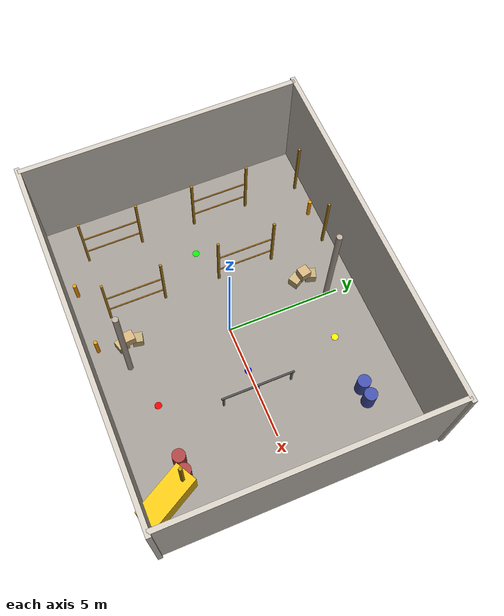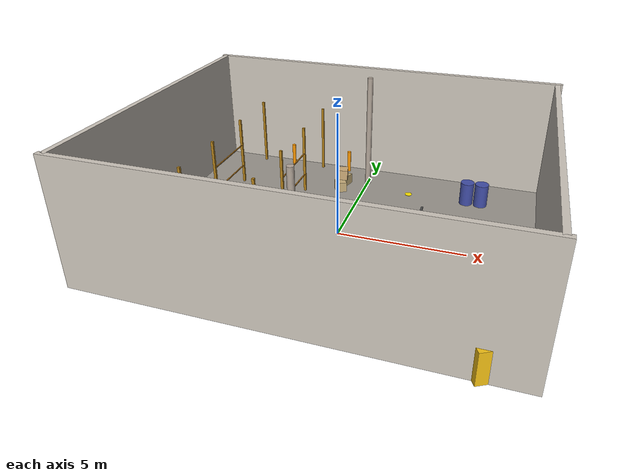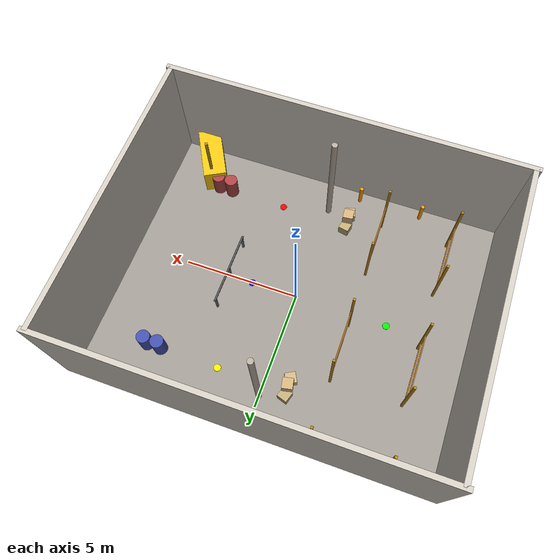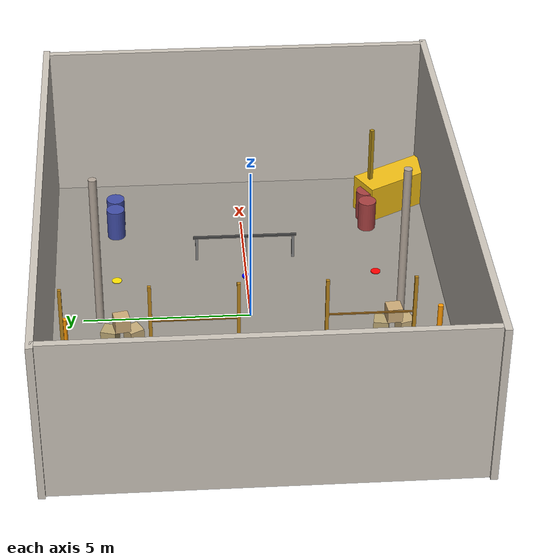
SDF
<?xml version="1.0" ?>
<sdf version="1.6">
  <world name="empty">

    <!-- ── gz-sim8 (Gazebo Harmonic) plugins ─────────────────────────── -->
    <plugin filename="gz-sim-physics-system"
            name="gz::sim::systems::Physics"/>
    <plugin filename="gz-sim-user-commands-system"
            name="gz::sim::systems::UserCommands"/>
    <plugin filename="gz-sim-scene-broadcaster-system"
            name="gz::sim::systems::SceneBroadcaster"/>
    <plugin filename="gz-sim-imu-system"
            name="gz::sim::systems::Imu"/>
    <plugin filename="gz-sim-sensors-system"
            name="gz::sim::systems::Sensors">
      <render_engine>ogre2</render_engine>
    </plugin>

    <physics name="default_physics" type="ignored">
      <max_step_size>0.001</max_step_size>
      <real_time_factor>1</real_time_factor>
    </physics>

    <!-- ── Lighting ───────────────────────────────────────────────────── -->
    <light name="sun" type="directional">
      <cast_shadows>true</cast_shadows>
      <pose>0 0 20 0 -0.5 0.7</pose>
      <diffuse>0.95 0.95 0.90 1</diffuse>
      <specular>0.2 0.2 0.2 1</specular>
      <direction>-0.5 0.2 -0.9</direction>
    </light>
    <light name="warehouse_fill" type="directional">
      <cast_shadows>false</cast_shadows>
      <pose>0 0 8 0 0 0</pose>
      <diffuse>0.5 0.5 0.55 1</diffuse>
      <specular>0.05 0.05 0.05 1</specular>
      <direction>0 0 -1</direction>
    </light>

    <!--  FLOOR  (15 × 12 m concrete)                                   -->
    <model name="floor">
      <static>true</static>
      <pose>0 0 0 0 0 0</pose>
      <link name="link">
        <collision name="col"><geometry><box><size>15 12 0.02</size></box></geometry></collision>
        <visual name="vis">
          <geometry><box><size>15 12 0.02</size></box></geometry>
          <material><ambient>0.50 0.48 0.45 1</ambient><diffuse>0.60 0.58 0.55 1</diffuse></material>
        </visual>
      </link>
    </model>

    <!--  WALLS  (height 5 m to match industrial warehouse)             -->
    <model name="wall_north">
      <static>true</static><pose>0 6.0 2.5 0 0 0</pose>
      <link name="link">
        <collision name="col"><geometry><box><size>15.4 0.2 5.0</size></box></geometry></collision>
        <visual name="vis"><geometry><box><size>15.4 0.2 5.0</size></box></geometry>
          <material><ambient>0.75 0.72 0.68 1</ambient><diffuse>0.80 0.77 0.73 1</diffuse></material>
        </visual>
      </link>
    </model>
    <model name="wall_south">
      <static>true</static><pose>0 -6.0 2.5 0 0 0</pose>
      <link name="link">
        <collision name="col"><geometry><box><size>15.4 0.2 5.0</size></box></geometry></collision>
        <visual name="vis"><geometry><box><size>15.4 0.2 5.0</size></box></geometry>
          <material><ambient>0.75 0.72 0.68 1</ambient><diffuse>0.80 0.77 0.73 1</diffuse></material>
        </visual>
      </link>
    </model>
    <model name="wall_east">
      <static>true</static><pose>7.5 0 2.5 0 0 0</pose>
      <link name="link">
        <collision name="col"><geometry><box><size>0.2 12.0 5.0</size></box></geometry></collision>
        <visual name="vis"><geometry><box><size>0.2 12.0 5.0</size></box></geometry>
          <material><ambient>0.75 0.72 0.68 1</ambient><diffuse>0.80 0.77 0.73 1</diffuse></material>
        </visual>
      </link>
    </model>
    <model name="wall_west">
      <static>true</static><pose>-7.5 0 2.5 0 0 0</pose>
      <link name="link">
        <collision name="col"><geometry><box><size>0.2 12.0 5.0</size></box></geometry></collision>
        <visual name="vis"><geometry><box><size>0.2 12.0 5.0</size></box></geometry>
          <material><ambient>0.75 0.72 0.68 1</ambient><diffuse>0.80 0.77 0.73 1</diffuse></material>
        </visual>
      </link>
    </model>

    <!--  PALLET RACK ROW A  (x = -5.5, outer left wall side)          -->
    <!--  5 uprights, 4 inter-post decks at 2 heights                  -->
    <!--  Uprights 0.10×0.10×3.0 m — LiDAR detects lower 0.2 m        -->
    <!-- Upright posts -->
    <model name="rackA_post1"><static>true</static><pose>-5.5 -4.5 1.5 0 0 0</pose>
      <link name="l"><collision name="c"><geometry><box><size>0.10 0.10 3.0</size></box></geometry></collision>
        <visual name="v"><geometry><box><size>0.10 0.10 3.0</size></box></geometry>
          <material><ambient>0.6 0.4 0.1 1</ambient><diffuse>0.7 0.5 0.1 1</diffuse></material></visual></link></model>
    <model name="rackA_post2"><static>true</static><pose>-5.5 -2.0 1.5 0 0 0</pose>
      <link name="l"><collision name="c"><geometry><box><size>0.10 0.10 3.0</size></box></geometry></collision>
        <visual name="v"><geometry><box><size>0.10 0.10 3.0</size></box></geometry>
          <material><ambient>0.6 0.4 0.1 1</ambient><diffuse>0.7 0.5 0.1 1</diffuse></material></visual></link></model>
    <model name="rackA_post3"><static>true</static><pose>-5.5 0.5 1.5 0 0 0</pose>
      <link name="l"><collision name="c"><geometry><box><size>0.10 0.10 3.0</size></box></geometry></collision>
        <visual name="v"><geometry><box><size>0.10 0.10 3.0</size></box></geometry>
          <material><ambient>0.6 0.4 0.1 1</ambient><diffuse>0.7 0.5 0.1 1</diffuse></material></visual></link></model>
    <model name="rackA_post4"><static>true</static><pose>-5.5 3.0 1.5 0 0 0</pose>
      <link name="l"><collision name="c"><geometry><box><size>0.10 0.10 3.0</size></box></geometry></collision>
        <visual name="v"><geometry><box><size>0.10 0.10 3.0</size></box></geometry>
          <material><ambient>0.6 0.4 0.1 1</ambient><diffuse>0.7 0.5 0.1 1</diffuse></material></visual></link></model>
    <model name="rackA_post5"><static>true</static><pose>-5.5 5.5 1.5 0 0 0</pose>
      <link name="l"><collision name="c"><geometry><box><size>0.10 0.10 3.0</size></box></geometry></collision>
        <visual name="v"><geometry><box><size>0.10 0.10 3.0</size></box></geometry>
          <material><ambient>0.6 0.4 0.1 1</ambient><diffuse>0.7 0.5 0.1 1</diffuse></material></visual></link></model>
    <!-- Horizontal decks at 0.8 m and 1.8 m -->
    <model name="rackA_deck1a"><static>true</static><pose>-5.5 -3.25 0.80 0 0 0</pose>
      <link name="l"><collision name="c"><geometry><box><size>0.05 2.40 0.04</size></box></geometry></collision>
        <visual name="v"><geometry><box><size>0.05 2.40 0.04</size></box></geometry>
          <material><ambient>0.5 0.3 0.1 1</ambient><diffuse>0.6 0.4 0.1 1</diffuse></material></visual></link></model>
    <model name="rackA_deck1b"><static>true</static><pose>-5.5 -3.25 1.80 0 0 0</pose>
      <link name="l"><collision name="c"><geometry><box><size>0.05 2.40 0.04</size></box></geometry></collision>
        <visual name="v"><geometry><box><size>0.05 2.40 0.04</size></box></geometry>
          <material><ambient>0.5 0.3 0.1 1</ambient><diffuse>0.6 0.4 0.1 1</diffuse></material></visual></link></model>
    <model name="rackA_deck2a"><static>true</static><pose>-5.5 1.75 0.80 0 0 0</pose>
      <link name="l"><collision name="c"><geometry><box><size>0.05 2.40 0.04</size></box></geometry></collision>
        <visual name="v"><geometry><box><size>0.05 2.40 0.04</size></box></geometry>
          <material><ambient>0.5 0.3 0.1 1</ambient><diffuse>0.6 0.4 0.1 1</diffuse></material></visual></link></model>
    <model name="rackA_deck2b"><static>true</static><pose>-5.5 1.75 1.80 0 0 0</pose>
      <link name="l"><collision name="c"><geometry><box><size>0.05 2.40 0.04</size></box></geometry></collision>
        <visual name="v"><geometry><box><size>0.05 2.40 0.04</size></box></geometry>
          <material><ambient>0.5 0.3 0.1 1</ambient><diffuse>0.6 0.4 0.1 1</diffuse></material></visual></link></model>

    <!--  PALLET RACK ROW B  (x = -2.5, inner, creates a 3 m aisle)    -->
    <model name="rackB_post1"><static>true</static><pose>-2.5 -4.5 1.5 0 0 0</pose>
      <link name="l"><collision name="c"><geometry><box><size>0.10 0.10 3.0</size></box></geometry></collision>
        <visual name="v"><geometry><box><size>0.10 0.10 3.0</size></box></geometry>
          <material><ambient>0.6 0.4 0.1 1</ambient><diffuse>0.7 0.5 0.1 1</diffuse></material></visual></link></model>
    <model name="rackB_post2"><static>true</static><pose>-2.5 -2.0 1.5 0 0 0</pose>
      <link name="l"><collision name="c"><geometry><box><size>0.10 0.10 3.0</size></box></geometry></collision>
        <visual name="v"><geometry><box><size>0.10 0.10 3.0</size></box></geometry>
          <material><ambient>0.6 0.4 0.1 1</ambient><diffuse>0.7 0.5 0.1 1</diffuse></material></visual></link></model>
    <model name="rackB_post3"><static>true</static><pose>-2.5 0.5 1.5 0 0 0</pose>
      <link name="l"><collision name="c"><geometry><box><size>0.10 0.10 3.0</size></box></geometry></collision>
        <visual name="v"><geometry><box><size>0.10 0.10 3.0</size></box></geometry>
          <material><ambient>0.6 0.4 0.1 1</ambient><diffuse>0.7 0.5 0.1 1</diffuse></material></visual></link></model>
    <model name="rackB_post4"><static>true</static><pose>-2.5 3.0 1.5 0 0 0</pose>
      <link name="l"><collision name="c"><geometry><box><size>0.10 0.10 3.0</size></box></geometry></collision>
        <visual name="v"><geometry><box><size>0.10 0.10 3.0</size></box></geometry>
          <material><ambient>0.6 0.4 0.1 1</ambient><diffuse>0.7 0.5 0.1 1</diffuse></material></visual></link></model>
    <model name="rackB_post5"><static>true</static><pose>-2.5 5.5 1.5 0 0 0</pose>
      <link name="l"><collision name="c"><geometry><box><size>0.10 0.10 3.0</size></box></geometry></collision>
        <visual name="v"><geometry><box><size>0.10 0.10 3.0</size></box></geometry>
          <material><ambient>0.6 0.4 0.1 1</ambient><diffuse>0.7 0.5 0.1 1</diffuse></material></visual></link></model>
    <model name="rackB_deck1a"><static>true</static><pose>-2.5 -3.25 0.80 0 0 0</pose>
      <link name="l"><collision name="c"><geometry><box><size>0.05 2.40 0.04</size></box></geometry></collision>
        <visual name="v"><geometry><box><size>0.05 2.40 0.04</size></box></geometry>
          <material><ambient>0.5 0.3 0.1 1</ambient><diffuse>0.6 0.4 0.1 1</diffuse></material></visual></link></model>
    <model name="rackB_deck1b"><static>true</static><pose>-2.5 -3.25 1.80 0 0 0</pose>
      <link name="l"><collision name="c"><geometry><box><size>0.05 2.40 0.04</size></box></geometry></collision>
        <visual name="v"><geometry><box><size>0.05 2.40 0.04</size></box></geometry>
          <material><ambient>0.5 0.3 0.1 1</ambient><diffuse>0.6 0.4 0.1 1</diffuse></material></visual></link></model>
    <model name="rackB_deck2a"><static>true</static><pose>-2.5 1.75 0.80 0 0 0</pose>
      <link name="l"><collision name="c"><geometry><box><size>0.05 2.40 0.04</size></box></geometry></collision>
        <visual name="v"><geometry><box><size>0.05 2.40 0.04</size></box></geometry>
          <material><ambient>0.5 0.3 0.1 1</ambient><diffuse>0.6 0.4 0.1 1</diffuse></material></visual></link></model>
    <model name="rackB_deck2b"><static>true</static><pose>-2.5 1.75 1.80 0 0 0</pose>
      <link name="l"><collision name="c"><geometry><box><size>0.05 2.40 0.04</size></box></geometry></collision>
        <visual name="v"><geometry><box><size>0.05 2.40 0.04</size></box></geometry>
          <material><ambient>0.5 0.3 0.1 1</ambient><diffuse>0.6 0.4 0.1 1</diffuse></material></visual></link></model>

    <!--  STACKED STORAGE BOXES (on the floor, 0.45×0.45×0.45 m each)  -->
    <!--  Centre at z=0.225 → spans 0 to 0.45 m → LiDAR detects ✓     -->
    <model name="box1"><static>true</static><pose>-1.0 -4.5 0.225 0 0 0.3</pose>
      <link name="l"><collision name="c"><geometry><box><size>0.45 0.45 0.45</size></box></geometry></collision>
        <visual name="v"><geometry><box><size>0.45 0.45 0.45</size></box></geometry>
          <material><ambient>0.70 0.62 0.42 1</ambient><diffuse>0.78 0.68 0.48 1</diffuse></material></visual></link></model>
    <model name="box2"><static>true</static><pose>-1.0 -3.8 0.225 0 0 -0.2</pose>
      <link name="l"><collision name="c"><geometry><box><size>0.45 0.45 0.45</size></box></geometry></collision>
        <visual name="v"><geometry><box><size>0.45 0.45 0.45</size></box></geometry>
          <material><ambient>0.65 0.58 0.38 1</ambient><diffuse>0.73 0.65 0.45 1</diffuse></material></visual></link></model>
    <model name="box3"><static>true</static><pose>-1.0 -4.15 0.675 0 0 0.1</pose>
      <link name="l"><collision name="c"><geometry><box><size>0.45 0.45 0.45</size></box></geometry></collision>
        <visual name="v"><geometry><box><size>0.45 0.45 0.45</size></box></geometry>
          <material><ambient>0.72 0.60 0.40 1</ambient><diffuse>0.80 0.67 0.47 1</diffuse></material></visual></link></model>
    <model name="box4"><static>true</static><pose>-1.0 3.5 0.225 0 0 0.5</pose>
      <link name="l"><collision name="c"><geometry><box><size>0.45 0.45 0.45</size></box></geometry></collision>
        <visual name="v"><geometry><box><size>0.45 0.45 0.45</size></box></geometry>
          <material><ambient>0.70 0.62 0.42 1</ambient><diffuse>0.78 0.68 0.48 1</diffuse></material></visual></link></model>
    <model name="box5"><static>true</static><pose>-1.0 4.2 0.225 0 0 -0.3</pose>
      <link name="l"><collision name="c"><geometry><box><size>0.45 0.45 0.45</size></box></geometry></collision>
        <visual name="v"><geometry><box><size>0.45 0.45 0.45</size></box></geometry>
          <material><ambient>0.65 0.58 0.38 1</ambient><diffuse>0.73 0.65 0.45 1</diffuse></material></visual></link></model>
    <model name="box6"><static>true</static><pose>-1.0 3.85 0.675 0 0 0.2</pose>
      <link name="l"><collision name="c"><geometry><box><size>0.45 0.45 0.45</size></box></geometry></collision>
        <visual name="v"><geometry><box><size>0.45 0.45 0.45</size></box></geometry>
          <material><ambient>0.72 0.60 0.40 1</ambient><diffuse>0.80 0.67 0.47 1</diffuse></material></visual></link></model>

    <!--  BARRELS  (cylinder r=0.28 m, h=1.0 m, centre z=0.5)          -->
    <!--  Span 0 to 1.0 m → LiDAR at 0.2 m detects ✓                  -->
    <model name="barrel1"><static>true</static><pose>4.5 4.0 0.5 0 0 0</pose>
      <link name="l"><collision name="c"><geometry><cylinder><radius>0.28</radius><length>1.0</length></cylinder></geometry></collision>
        <visual name="v"><geometry><cylinder><radius>0.28</radius><length>1.0</length></cylinder></geometry>
          <material><ambient>0.20 0.25 0.55 1</ambient><diffuse>0.25 0.30 0.65 1</diffuse></material></visual></link></model>
    <model name="barrel2"><static>true</static><pose>5.1 4.0 0.5 0 0 0</pose>
      <link name="l"><collision name="c"><geometry><cylinder><radius>0.28</radius><length>1.0</length></cylinder></geometry></collision>
        <visual name="v"><geometry><cylinder><radius>0.28</radius><length>1.0</length></cylinder></geometry>
          <material><ambient>0.20 0.25 0.55 1</ambient><diffuse>0.25 0.30 0.65 1</diffuse></material></visual></link></model>
    <model name="barrel3"><static>true</static><pose>4.5 -4.0 0.5 0 0 0</pose>
      <link name="l"><collision name="c"><geometry><cylinder><radius>0.28</radius><length>1.0</length></cylinder></geometry></collision>
        <visual name="v"><geometry><cylinder><radius>0.28</radius><length>1.0</length></cylinder></geometry>
          <material><ambient>0.55 0.20 0.20 1</ambient><diffuse>0.65 0.25 0.25 1</diffuse></material></visual></link></model>
    <model name="barrel4"><static>true</static><pose>5.1 -4.0 0.5 0 0 0</pose>
      <link name="l"><collision name="c"><geometry><cylinder><radius>0.28</radius><length>1.0</length></cylinder></geometry></collision>
        <visual name="v"><geometry><cylinder><radius>0.28</radius><length>1.0</length></cylinder></geometry>
          <material><ambient>0.55 0.20 0.20 1</ambient><diffuse>0.65 0.25 0.25 1</diffuse></material></visual></link></model>

    <!--  STRUCTURAL PILLARS (r=0.12 m, h=5 m)  definitely detected    -->
    <model name="pillar_north"><static>true</static><pose>0.0 4.5 2.5 0 0 0</pose>
      <link name="l"><collision name="c"><geometry><cylinder><radius>0.12</radius><length>5.0</length></cylinder></geometry></collision>
        <visual name="v"><geometry><cylinder><radius>0.12</radius><length>5.0</length></cylinder></geometry>
          <material><ambient>0.65 0.60 0.55 1</ambient><diffuse>0.70 0.65 0.60 1</diffuse></material></visual></link></model>
    <model name="pillar_south"><static>true</static><pose>0.0 -4.5 2.5 0 0 0</pose>
      <link name="l"><collision name="c"><geometry><cylinder><radius>0.12</radius><length>5.0</length></cylinder></geometry></collision>
        <visual name="v"><geometry><cylinder><radius>0.12</radius><length>5.0</length></cylinder></geometry>
          <material><ambient>0.65 0.60 0.55 1</ambient><diffuse>0.70 0.65 0.60 1</diffuse></material></visual></link></model>

    <!--  FORKLIFT (simplified as two boxes: body + mast)               -->
    <!--  Body 1.0×2.4×1.2 m, centre z=0.6 → 0 to 1.2 m → detected ✓ -->
    <model name="forklift_body"><static>true</static><pose>5.8 -5.0 0.6 0 0 0.5</pose>
      <link name="l"><collision name="c"><geometry><box><size>1.0 2.4 1.2</size></box></geometry></collision>
        <visual name="v"><geometry><box><size>1.0 2.4 1.2</size></box></geometry>
          <material><ambient>0.85 0.65 0.05 1</ambient><diffuse>0.95 0.75 0.08 1</diffuse></material></visual></link></model>
    <model name="forklift_mast"><static>true</static><pose>5.5 -4.2 1.5 0 0 0.5</pose>
      <link name="l"><collision name="c"><geometry><box><size>0.12 0.12 3.0</size></box></geometry></collision>
        <visual name="v"><geometry><box><size>0.12 0.12 3.0</size></box></geometry>
          <material><ambient>0.60 0.45 0.05 1</ambient><diffuse>0.70 0.55 0.08 1</diffuse></material></visual></link></model>

    <!--  CONVEYOR BELT (3 legs + belt surface)                         -->
    <!--  Legs 0.08×0.08×0.8 m → 0 to 0.8 m → LiDAR detects ✓        -->
    <model name="conv_leg1"><static>true</static><pose>3.0 -1.5 0.4 0 0 0</pose>
      <link name="l"><collision name="c"><geometry><box><size>0.08 0.08 0.80</size></box></geometry></collision>
        <visual name="v"><geometry><box><size>0.08 0.08 0.80</size></box></geometry>
          <material><ambient>0.4 0.4 0.4 1</ambient><diffuse>0.5 0.5 0.5 1</diffuse></material></visual></link></model>
    <model name="conv_leg2"><static>true</static><pose>3.0  0.0 0.4 0 0 0</pose>
      <link name="l"><collision name="c"><geometry><box><size>0.08 0.08 0.80</size></box></geometry></collision>
        <visual name="v"><geometry><box><size>0.08 0.08 0.80</size></box></geometry>
          <material><ambient>0.4 0.4 0.4 1</ambient><diffuse>0.5 0.5 0.5 1</diffuse></material></visual></link></model>
    <model name="conv_leg3"><static>true</static><pose>3.0  1.5 0.4 0 0 0</pose>
      <link name="l"><collision name="c"><geometry><box><size>0.08 0.08 0.80</size></box></geometry></collision>
        <visual name="v"><geometry><box><size>0.08 0.08 0.80</size></box></geometry>
          <material><ambient>0.4 0.4 0.4 1</ambient><diffuse>0.5 0.5 0.5 1</diffuse></material></visual></link></model>
    <model name="conv_belt"><static>true</static><pose>3.0 0.0 0.83 0 0 0</pose>
      <link name="l"><collision name="c"><geometry><box><size>0.08 3.2 0.06</size></box></geometry></collision>
        <visual name="v"><geometry><box><size>0.08 3.2 0.06</size></box></geometry>
          <material><ambient>0.2 0.2 0.2 1</ambient><diffuse>0.3 0.3 0.3 1</diffuse></material></visual></link></model>

    <!--  SAFETY BOLLARDS (r=0.08 m, h=1.0 m) at aisle entrances       -->
    <model name="bollard1"><static>true</static><pose>-1.2  5.5 0.5 0 0 0</pose>
      <link name="l"><collision name="c"><geometry><cylinder><radius>0.08</radius><length>1.0</length></cylinder></geometry></collision>
        <visual name="v"><geometry><cylinder><radius>0.08</radius><length>1.0</length></cylinder></geometry>
          <material><ambient>0.9 0.5 0.0 1</ambient><diffuse>1.0 0.6 0.0 1</diffuse></material></visual></link></model>
    <model name="bollard2"><static>true</static><pose>-1.2 -5.5 0.5 0 0 0</pose>
      <link name="l"><collision name="c"><geometry><cylinder><radius>0.08</radius><length>1.0</length></cylinder></geometry></collision>
        <visual name="v"><geometry><cylinder><radius>0.08</radius><length>1.0</length></cylinder></geometry>
          <material><ambient>0.9 0.5 0.0 1</ambient><diffuse>1.0 0.6 0.0 1</diffuse></material></visual></link></model>
    <model name="bollard3"><static>true</static><pose>-4.0  5.5 0.5 0 0 0</pose>
      <link name="l"><collision name="c"><geometry><cylinder><radius>0.08</radius><length>1.0</length></cylinder></geometry></collision>
        <visual name="v"><geometry><cylinder><radius>0.08</radius><length>1.0</length></cylinder></geometry>
          <material><ambient>0.9 0.5 0.0 1</ambient><diffuse>1.0 0.6 0.0 1</diffuse></material></visual></link></model>
    <model name="bollard4"><static>true</static><pose>-4.0 -5.5 0.5 0 0 0</pose>
      <link name="l"><collision name="c"><geometry><cylinder><radius>0.08</radius><length>1.0</length></cylinder></geometry></collision>
        <visual name="v"><geometry><cylinder><radius>0.08</radius><length>1.0</length></cylinder></geometry>
          <material><ambient>0.9 0.5 0.0 1</ambient><diffuse>1.0 0.6 0.0 1</diffuse></material></visual></link></model>

    <!--  FLOOR WAYPOINT MARKERS (navigation reference discs)           -->
    <model name="wp_A"><static>true</static><pose>-4.0 0.0 0.015 0 0 0</pose>
      <link name="l"><collision name="c"><geometry><cylinder><radius>0.15</radius><length>0.03</length></cylinder></geometry></collision>
        <visual name="v"><geometry><cylinder><radius>0.15</radius><length>0.03</length></cylinder></geometry>
          <material><ambient>0 0.8 0 1</ambient><diffuse>0 1.0 0 1</diffuse></material></visual></link></model>
    <model name="wp_B"><static>true</static><pose>2.0 0.0 0.015 0 0 0</pose>
      <link name="l"><collision name="c"><geometry><cylinder><radius>0.15</radius><length>0.03</length></cylinder></geometry></collision>
        <visual name="v"><geometry><cylinder><radius>0.15</radius><length>0.03</length></cylinder></geometry>
          <material><ambient>0 0 0.9 1</ambient><diffuse>0 0 1.0 1</diffuse></material></visual></link></model>
    <model name="wp_C"><static>true</static><pose>2.0 4.0 0.015 0 0 0</pose>
      <link name="l"><collision name="c"><geometry><cylinder><radius>0.15</radius><length>0.03</length></cylinder></geometry></collision>
        <visual name="v"><geometry><cylinder><radius>0.15</radius><length>0.03</length></cylinder></geometry>
          <material><ambient>0.9 0.8 0 1</ambient><diffuse>1.0 0.9 0 1</diffuse></material></visual></link></model>
    <model name="wp_D"><static>true</static><pose>2.0 -4.0 0.015 0 0 0</pose>
      <link name="l"><collision name="c"><geometry><cylinder><radius>0.15</radius><length>0.03</length></cylinder></geometry></collision>
        <visual name="v"><geometry><cylinder><radius>0.15</radius><length>0.03</length></cylinder></geometry>
          <material><ambient>0.85 0 0 1</ambient><diffuse>1.0 0 0 1</diffuse></material></visual></link></model>

  </world>
</sdf>
